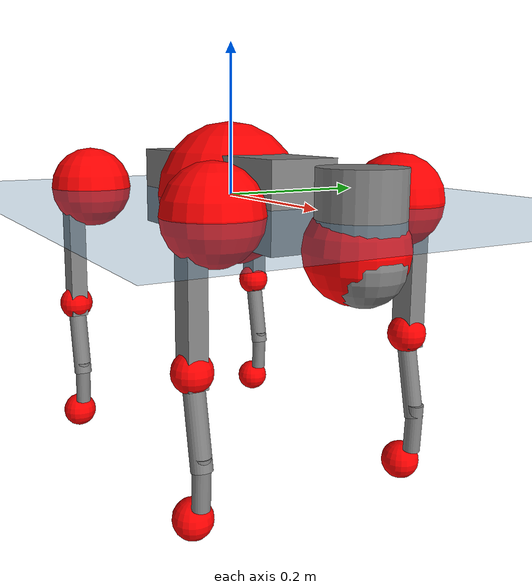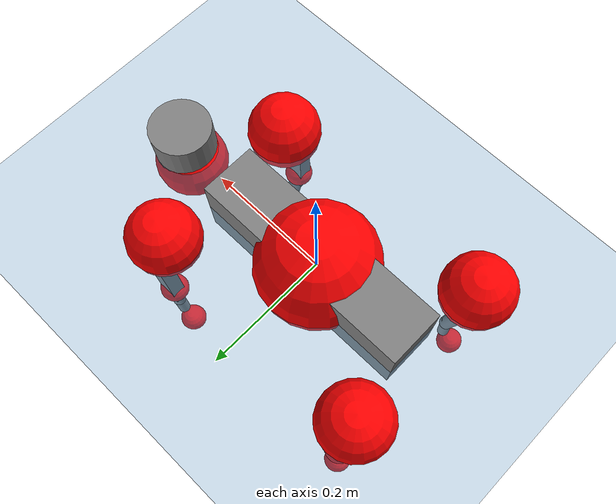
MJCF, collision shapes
<mujoco model="go2">
  <compiler angle="radian" assetdir="assets" balanceinertia="true" inertiafromgeom="false"/>

  <option timestep="0.005" density="1.2" viscosity="2e-05"/>

  <size nkey="1"/>

  <visual>
    <quality shadowsize="8192"/>
    <map shadowclip="0.5"/>
  </visual>

  <default>
    <default class="/">
      <geom contype="0" conaffinity="0" group="1" solref="-1000 -80"/>
      <site size="0.01 0.005 0.005" group="5"/>
      <general forcelimited="true" biastype="affine" gainprm="20" biasprm="0 -20 -0.5"/>
      <default class="go2">
        <joint armature="0.01" damping="0.01" frictionloss="0.2"/>
        <geom condim="1" margin="0.001"/>
        <default class="visual">
          <geom type="mesh" group="2"/>
        </default>
        <default class="collision">
          <geom group="3"/>
          <default class="foot">
            <geom size="0.022 0 0" condim="6" priority="1" friction="0.8 0.02 0.01" solimp="0.015 1 0.022"/>
          </default>
        </default>
        <default class="reward_collision_sphere">
          <geom group="5" rgba="1 0 0 1"/>
        </default>
      </default>
    </default>
  </default>

  <asset>
    <texture type="skybox" colorspace="auto" name="//unnamed_texture_0" builtin="gradient" rgb1="0.95 0.95 0.95" rgb2="0.95 0.95 0.95" width="100" height="600"/>
    <texture type="2d" colorspace="auto" name="texplane" builtin="checker" rgb1="0.345 0.575 0.748" rgb2="0.345 0.575 0.748" markrgb="1 1 1" width="512" height="512"/>
    <material name="MatPlane" class="/" texture="texplane" texuniform="true" texrepeat="2 2" specular="0.9"/>
    <material name="metal" class="/" rgba="0.9 0.95 0.95 1"/>
    <material name="black" class="/" rgba="0 0 0 1"/>
    <material name="white" class="/"/>
    <material name="gray" class="/" rgba="0.671705 0.692426 0.77427 1"/>
    <mesh name="base_0" class="/" file="base_0.obj"/>
    <mesh name="base_1" class="/" file="base_1.obj"/>
    <mesh name="base_2" class="/" file="base_2.obj"/>
    <mesh name="base_3" class="/" file="base_3.obj"/>
    <mesh name="base_4" class="/" file="base_4.obj"/>
    <mesh name="hip_0" class="/" file="hip_0.obj"/>
    <mesh name="hip_1" class="/" file="hip_1.obj"/>
    <mesh name="thigh_0" class="/" file="thigh_0.obj"/>
    <mesh name="thigh_1" class="/" file="thigh_1.obj"/>
    <mesh name="thigh_mirror_0" class="/" file="thigh_mirror_0.obj"/>
    <mesh name="thigh_mirror_1" class="/" file="thigh_mirror_1.obj"/>
    <mesh name="calf_0" class="/" file="calf_0.obj"/>
    <mesh name="calf_1" class="/" file="calf_1.obj"/>
    <mesh name="calf_mirror_0" class="/" file="calf_mirror_0.obj"/>
    <mesh name="calf_mirror_1" class="/" file="calf_mirror_1.obj"/>
    <mesh name="foot" class="/" file="foot.obj"/>
  </asset>

  <worldbody>
    <geom name="floor" class="/" size="100 100 0.125" type="plane" group="0" material="MatPlane"/>
    <light name="toplight_shadow" class="/" pos="0 0 5" dir="0.0990148 0.0990148 -0.990148" type="directional" ambient="0.04 0.04 0.04" diffuse="0.55 0.55 0.55" specular="0.12 0.12 0.12"/>
    <light name="toplight_fill" class="/" pos="0 0 5" dir="0.0990148 0.0990148 -0.990148" type="directional" castshadow="false" ambient="0.04 0.04 0.04" diffuse="0.3 0.3 0.3" specular="0.08 0.08 0.08"/>
    <body name="trunk" childclass="go2" pos="-0.00258095 -0.00120185 0.000839475" quat="1 0.000294299 -0.000587733 0.00069738">
      <inertial pos="0.018202 -0.000463296 -0.00453014" quat="-0.00264837 0.714649 -0.00516772 0.699459" mass="6.18844" diaginertia="0.107099 0.155968 0.00876605"/>
      <joint name="//unnamed_joint_0" type="free" armature="0" damping="0" frictionloss="0"/>
      <geom name="//unnamed_geom_1" class="visual" material="black" mesh="base_0"/>
      <geom name="//unnamed_geom_2" class="visual" material="black" mesh="base_1"/>
      <geom name="//unnamed_geom_3" class="visual" material="black" mesh="base_2"/>
      <geom name="//unnamed_geom_4" class="visual" material="white" mesh="base_3"/>
      <geom name="//unnamed_geom_5" class="visual" material="gray" mesh="base_4"/>
      <geom name="trunk_1" class="collision" size="0.182041 0.0452442 0.055164" type="box"/>
      <geom name="trunk_2" class="collision" size="0.0483895 0.0435505" pos="0.2843 0 0.00809945" type="cylinder"/>
      <geom name="trunk_3" class="collision" size="0.0454861" pos="0.292281 0 -0.0485967"/>
      <geom name="//unnamed_geom_9" class="reward_collision_sphere" size="0.096779"/>
      <geom name="//unnamed_geom_10" class="reward_collision_sphere" size="0.0580674" pos="0.279313 0 -0.0364475"/>
      <site name="imu" pos="-0.0245203 -0.00474119 0.0394529" size="0.0096779"/>
      <camera name="track" pos="0 -2.19176 0" quat="0.707107 0.707107 0 0" mode="trackcom"/>
      <camera name="ego_camera" pos="0.311234 0 0.0364475" quat="-0.5 -0.5 0.5 0.5"/>
      <body name="FL_hip" pos="0.191966 0.050435 0.00221096" quat="0.999999 0.00021935 0.0010933 0.000440774">
        <inertial pos="-0.00798389 0.00258381 -0.000214526" quat="0.498094 0.497941 0.504129 0.499811" mass="0.631679" diaginertia="0.000901121 0.000938382 0.00017222"/>
        <joint name="FL_hip_joint" pos="0 0 0" axis="0.999993 0.00258038 -0.00261207" stiffness="0.00390371" range="-1.05805 1.00269" armature="0.0104708" damping="0" frictionloss="0.18697"/>
        <geom name="//unnamed_geom_11" class="visual" material="metal" mesh="hip_0"/>
        <geom name="//unnamed_geom_12" class="visual" material="gray" mesh="hip_1"/>
        <geom name="//unnamed_geom_13" class="collision" size="0.0445183 0.0193558" pos="0 0.0876704 0" quat="0.707107 0.707107 0 0" type="cylinder"/>
        <geom name="//unnamed_geom_14" class="reward_collision_sphere" size="0.0580674" pos="0 0.0767116 0"/>
        <body name="FL_thigh" pos="5.42034e-05 0.103948 0.002055" quat="1 -0.000320564 -3.21348e-06 -0.000129743">
          <inertial pos="-0.00120162 -0.0240235 -0.0240791" quat="0.829102 0.0871435 -0.0213652 0.551851" mass="1.05309" diaginertia="0.00582315 0.00908118 0.000308497"/>
          <joint name="FL_thigh_joint" pos="0 0 0" axis="0.00184356 0.999991 0.00385677" stiffness="0.014217" range="-1.60584 3.52901" armature="0.0104493" damping="0" frictionloss="0.191158"/>
          <geom name="//unnamed_geom_15" class="visual" material="metal" mesh="thigh_0"/>
          <geom name="//unnamed_geom_16" class="visual" material="gray" mesh="thigh_1"/>
          <geom name="//unnamed_geom_17" class="collision" size="0.10307 0.0118554 0.0164524" pos="0 0 -0.0862592" quat="0.707107 0 0.707107 0" type="box"/>
          <body name="FL_calf" pos="0.000477257 -0.00154663 -0.173285" quat="1 -0.000191522 6.54188e-05 0.000278897">
            <inertial pos="0.00674222 -0.000351786 -0.11583" quat="0.712715 -0.00882098 -0.000609294 0.701398" mass="0.21611" diaginertia="0.00149249 0.00231101 1.83222e-05"/>
            <joint name="FL_calf_joint" pos="0 0 0" axis="-0.00608878 0.999956 -0.00717163" range="-2.72923 -0.876832" armature="0.00961075" damping="0.00112174" frictionloss="0.194293"/>
            <geom name="//unnamed_geom_18" class="visual" material="gray" mesh="calf_0"/>
            <geom name="//unnamed_geom_19" class="visual" material="black" mesh="calf_1"/>
            <geom name="FL_calf0" class="collision" size="0.0116135 0.0580674" pos="0.00798036 0 -0.0485967" quat="0.994493 0 -0.104807 0" type="cylinder"/>
            <geom name="//unnamed_geom_21" class="collision" size="0.0106457 0.0314532" pos="0.0199509 0 -0.119872" quat="0.999688 0 0.0249974 0" type="cylinder"/>
            <geom name="//unnamed_geom_22" class="visual" pos="0 0 -0.172518" quat="1 0 0 0" material="black" mesh="foot"/>
            <geom name="FL_foot" class="foot" size="0.0155087" pos="-0.00199509 0 -0.172518"/>
            <geom name="//unnamed_geom_24" class="reward_collision_sphere" size="0.0241947"/>
            <geom name="//unnamed_geom_25" class="reward_collision_sphere" size="0.0241947" pos="-0.00199509 0 -0.172518"/>
            <site name="FL_foot" class="foot" pos="-0.00199509 0 -0.172518" size="0.0096779"/>
          </body>
        </body>
      </body>
      <body name="FR_hip" pos="0.193825 -0.0483334 -0.000331519" quat="1 6.71122e-05 -0.000468161 -7.362e-05">
        <inertial pos="-0.00317943 -0.00304999 -0.000503707" quat="0.496178 0.506427 0.500012 0.49732" mass="0.643792" diaginertia="0.000888384 0.000965222 0.000168197"/>
        <joint name="FR_hip_joint" pos="0 0 0" axis="1 8.14468e-05 -0.000702635" range="-1.04345 1.04851" armature="0.00839664" damping="0.0188873" frictionloss="0.218859"/>
        <geom name="//unnamed_geom_26" class="visual" pos="0 2.49094e-09 1.06842e-07" quat="4.63268e-05 1 0 0" material="metal" mesh="hip_0"/>
        <geom name="//unnamed_geom_27" class="visual" pos="0 4.03811e-09 -2.6426e-07" quat="4.63268e-05 1 0 0" material="gray" mesh="hip_1"/>
        <geom name="//unnamed_geom_28" class="collision" size="0.0445183 0.0193558" pos="0 -0.0876704 0" quat="0.707107 0.707107 0 0" type="cylinder"/>
        <geom name="//unnamed_geom_29" class="reward_collision_sphere" size="0.0580674" pos="0 -0.0767116 0"/>
        <body name="FR_thigh" pos="0.000793136 -0.103312 0.00288139" quat="0.999999 0.000504381 0.000137113 0.00112493">
          <inertial pos="-0.00481754 0.0219236 -0.0253505" quat="0.551723 -0.0202018 0.0849039 0.829449" mass="1.02174" diaginertia="0.0059218 0.00941366 0.000302694"/>
          <joint name="FR_thigh_joint" pos="0 0 0" axis="-0.000594218 -1 0.000513888" range="-3.46955 1.58545" armature="0.00972493" damping="0.0156031" frictionloss="0.187362"/>
          <geom name="//unnamed_geom_30" class="visual" material="metal" mesh="thigh_mirror_0"/>
          <geom name="//unnamed_geom_31" class="visual" material="gray" mesh="thigh_mirror_1"/>
          <geom name="//unnamed_geom_32" class="collision" size="0.10307 0.0118554 0.0164524" pos="0 0 -0.0862592" quat="0.707107 0 0.707107 0" type="box"/>
          <body name="FR_calf" pos="0.000638329 -0.000287516 -0.172191" quat="1 3.94081e-06 1.87359e-05 3.94768e-05">
            <inertial pos="0.00629088 0.000473532 -0.113729" quat="0.703692 -0.00426811 0.00152589 0.71049" mass="0.221364" diaginertia="0.00154914 0.0023307 1.90954e-05"/>
            <joint name="FR_calf_joint" pos="0 0 0" axis="0.000160618 -0.999946 0.01035" range="0.84133 2.71209" armature="0.00994204" damping="0.0115177" frictionloss="0.184326"/>
            <geom name="//unnamed_geom_33" class="visual" material="gray" mesh="calf_mirror_0"/>
            <geom name="//unnamed_geom_34" class="visual" material="black" mesh="calf_mirror_1"/>
            <geom name="FR_calf0" class="collision" size="0.0125813 0.0580674" pos="0.00997545 0 -0.0485967" quat="0.995004 0 -0.0998334 0" type="cylinder"/>
            <geom name="//unnamed_geom_36" class="collision" size="0.0106457 0.0314532" pos="0.0199509 0 -0.119872" quat="0.999688 0 0.0249974 0" type="cylinder"/>
            <geom name="//unnamed_geom_37" class="visual" pos="0 0 -0.172518" quat="1 0 0 0" material="black" mesh="foot"/>
            <geom name="FR_foot" class="foot" size="0.0237879" pos="-0.00199509 0 -0.172518"/>
            <geom name="//unnamed_geom_39" class="reward_collision_sphere" size="0.0241947"/>
            <geom name="//unnamed_geom_40" class="reward_collision_sphere" size="0.0241947" pos="-0.00199509 0 -0.172518"/>
            <site name="FR_foot" class="foot" pos="-0.00199509 0 -0.172518" size="0.0096779"/>
          </body>
        </body>
      </body>
      <body name="RL_hip" pos="-0.19212 0.0501827 0.000529569" quat="0.999999 0.00090791 -0.000701995 0.000581372">
        <inertial pos="0.00798609 0.00244011 -0.000181519" quat="0.505488 0.498255 0.496993 0.499221" mass="0.611909" diaginertia="0.000879304 0.000964977 0.000170455"/>
        <joint name="RL_hip_joint" pos="0 0 0" axis="-0.999897 -0.0120115 0.00786751" stiffness="0.0031561" range="-1.03453 1.04606" armature="0.00961996" damping="0.00845483" frictionloss="0.184997"/>
        <geom name="//unnamed_geom_41" class="visual" pos="-1.63429e-09 0 -3.20358e-07" quat="4.63268e-05 0 1 0" material="metal" mesh="hip_0"/>
        <geom name="//unnamed_geom_42" class="visual" pos="-2.64938e-09 0 -2.84112e-07" quat="4.63268e-05 0 1 0" material="gray" mesh="hip_1"/>
        <geom name="//unnamed_geom_43" class="collision" size="0.0445183 0.0193558" pos="0 0.0876704 0" quat="0.707107 0.707107 0 0" type="cylinder"/>
        <geom name="//unnamed_geom_44" class="reward_collision_sphere" size="0.0580674" pos="0 0.0767116 0"/>
        <body name="RL_thigh" pos="-0.00235312 0.103979 0.00109589" quat="0.999999 -0.000223416 0.000970194 -0.000740576">
          <inertial pos="-0.00344316 -0.023841 -0.0261577" quat="0.828162 0.0804917 -0.0301895 0.553857" mass="1.01833" diaginertia="0.00580644 0.00904103 0.000302721"/>
          <joint name="RL_thigh_joint" pos="0 0 0" axis="0.00337587 0.999991 0.00242377" stiffness="0.00426173" range="-0.521549 4.52282" armature="0.00924751" damping="0" frictionloss="0.203169"/>
          <geom name="//unnamed_geom_45" class="visual" material="metal" mesh="thigh_0"/>
          <geom name="//unnamed_geom_46" class="visual" material="gray" mesh="thigh_1"/>
          <geom name="//unnamed_geom_47" class="collision" size="0.10307 0.0118554 0.0164524" pos="0 0 -0.0862592" quat="0.707107 0 0.707107 0" type="box"/>
          <body name="RL_calf" pos="0.000485676 -0.00187033 -0.172873" quat="1 8.60503e-06 -8.9491e-05 -2.80527e-05">
            <inertial pos="0.00635537 -0.000441728 -0.114178" quat="0.709936 0.00181112 -0.00416814 0.704252" mass="0.218137" diaginertia="0.00146906 0.0023139 1.83207e-05"/>
            <joint name="RL_calf_joint" pos="0 0 0" axis="-0.00202084 0.999998 -0.000870902" stiffness="0.00041545" range="-2.70082 -0.837099" armature="0.00993102" damping="0" frictionloss="0.192228"/>
            <geom name="//unnamed_geom_48" class="visual" material="gray" mesh="calf_0"/>
            <geom name="//unnamed_geom_49" class="visual" material="black" mesh="calf_1"/>
            <geom name="RL_calf0" class="collision" size="0.0125813 0.0580674" pos="0.00997545 0 -0.0485967" quat="0.995004 0 -0.0998334 0" type="cylinder"/>
            <geom name="//unnamed_geom_51" class="collision" size="0.0106457 0.0314532" pos="0.0199509 0 -0.119872" quat="0.999688 0 0.0249974 0" type="cylinder"/>
            <geom name="//unnamed_geom_52" class="visual" pos="0 0 -0.172518" quat="1 0 0 0" material="black" mesh="foot"/>
            <geom name="RL_foot" class="foot" size="0.0203387" pos="-0.00199509 0 -0.172518"/>
            <geom name="//unnamed_geom_54" class="reward_collision_sphere" size="0.0241947"/>
            <geom name="//unnamed_geom_55" class="reward_collision_sphere" size="0.0241947" pos="-0.00199509 0 -0.172518"/>
            <site name="RL_foot" class="foot" pos="-0.00199509 0 -0.172518" size="0.0096779"/>
          </body>
        </body>
      </body>
      <body name="RR_hip" pos="-0.192674 -0.0536849 -0.000394678" quat="1 -0.000212446 0.000446455 -0.000313928">
        <inertial pos="0.00506358 -0.000106478 0.000115624" quat="0.492185 0.492113 0.502972 0.512444" mass="0.614345" diaginertia="0.000877444 0.000950963 0.000169062"/>
        <joint name="RR_hip_joint" pos="0 0 0" axis="-0.999994 -0.00144962 -0.00303598" stiffness="0.00447371" range="-1.05497 1.05133" armature="0.0110286" damping="0.0191373" frictionloss="0.171802"/>
        <geom name="//unnamed_geom_56" class="visual" pos="1.63769e-09 2.49094e-09 -4.272e-07" quat="2.14617e-09 4.63268e-05 4.63268e-05 -1" material="metal" mesh="hip_0"/>
        <geom name="//unnamed_geom_57" class="visual" pos="2.64096e-09 4.03811e-09 -1.98519e-08" quat="2.14617e-09 4.63268e-05 4.63268e-05 -1" material="gray" mesh="hip_1"/>
        <geom name="//unnamed_geom_58" class="collision" size="0.0445183 0.0193558" pos="0 -0.0876704 0" quat="0.707107 0.707107 0 0" type="cylinder"/>
        <geom name="//unnamed_geom_59" class="reward_collision_sphere" size="0.0580674" pos="0 -0.0767116 0"/>
        <body name="RR_thigh" pos="-0.000565969 -0.105294 -0.00288465" quat="1 -0.000276352 -8.36457e-05 -0.000189396">
          <inertial pos="-0.00348076 0.0247428 -0.0262141" quat="0.551304 -0.0193739 0.0854541 0.82969" mass="1.06046" diaginertia="0.00599756 0.00937353 0.000300498"/>
          <joint name="RR_thigh_joint" pos="0 0 0" axis="0.000234469 -0.999997 -0.00236076" range="-4.58603 0.536941" armature="0.00971257" damping="0.021197" frictionloss="0.203428"/>
          <geom name="//unnamed_geom_60" class="visual" material="metal" mesh="thigh_mirror_0"/>
          <geom name="//unnamed_geom_61" class="visual" material="gray" mesh="thigh_mirror_1"/>
          <geom name="//unnamed_geom_62" class="collision" size="0.10307 0.0118554 0.0164524" pos="0 0 -0.0862592" quat="0.707107 0 0.707107 0" type="box"/>
          <body name="RR_calf" pos="-0.00258317 -6.881e-05 -0.172767" quat="1 -0.000111534 -2.69241e-05 5.4625e-05">
            <inertial pos="0.00869658 0.00101278 -0.114662" quat="0.701552 -0.00430115 0.00472352 0.71259" mass="0.218608" diaginertia="0.00142615 0.00219904 1.81331e-05"/>
            <joint name="RR_calf_joint" pos="0 0 0" axis="-0.00666912 -0.999962 0.00559692" range="0.866952 2.77775" armature="0.00876505" damping="0.012778" frictionloss="0.183441"/>
            <geom name="//unnamed_geom_63" class="visual" material="gray" mesh="calf_mirror_0"/>
            <geom name="//unnamed_geom_64" class="visual" material="black" mesh="calf_mirror_1"/>
            <geom name="RR_calf0" class="collision" size="0.0125813 0.0580674" pos="0.00997545 0 -0.0485967" quat="0.995004 0 -0.0998334 0" type="cylinder"/>
            <geom name="//unnamed_geom_66" class="collision" size="0.0106457 0.0314532" pos="0.0199509 0 -0.119872" quat="0.999688 0 0.0249974 0" type="cylinder"/>
            <geom name="//unnamed_geom_67" class="visual" pos="0 0 -0.172518" quat="1 0 0 0" material="black" mesh="foot"/>
            <geom name="RR_foot" class="foot" size="0.022997" pos="-0.00199509 0 -0.172518"/>
            <geom name="//unnamed_geom_69" class="reward_collision_sphere" size="0.0241947"/>
            <geom name="//unnamed_geom_70" class="reward_collision_sphere" size="0.0241947" pos="-0.00199509 0 -0.172518"/>
            <site name="RR_foot" class="foot" pos="-0.00199509 0 -0.172518" size="0.0096779"/>
          </body>
        </body>
      </body>
    </body>
  </worldbody>

  <contact>
    <pair class="/" geom1="floor" geom2="FL_foot" name="//unnamed_contact_0"/>
    <pair class="/" geom1="floor" geom2="FR_foot" name="//unnamed_contact_1"/>
    <pair class="/" geom1="floor" geom2="RL_foot" name="//unnamed_contact_2"/>
    <pair class="/" geom1="floor" geom2="RR_foot" name="//unnamed_contact_3"/>
  </contact>

  <actuator>
    <general name="FL_hip" class="/" joint="FL_hip_joint" forcerange="-22.4247 22.4247" gainprm="19.4009" biasprm="0 -19.4009 -0.483167"/>
    <general name="FL_thigh" class="/" joint="FL_thigh_joint" forcerange="-23.0348 23.0348" gainprm="19.4009" biasprm="0 -19.4009 -0.483167"/>
    <general name="FL_calf" class="/" joint="FL_calf_joint" forcerange="-44.1509 44.1509" gainprm="19.4009" biasprm="0 -19.4009 -0.483167"/>
    <general name="FR_hip" class="/" joint="FR_hip_joint" forcerange="-25.1409 25.1409" gainprm="19.4009" biasprm="0 -19.4009 -0.483167"/>
    <general name="FR_thigh" class="/" joint="FR_thigh_joint" forcerange="-22.6727 22.6727" gainprm="19.4009" biasprm="0 -19.4009 -0.483167"/>
    <general name="FR_calf" class="/" joint="FR_calf_joint" forcerange="-41.0924 41.0924" gainprm="19.4009" biasprm="0 -19.4009 -0.483167"/>
    <general name="RL_hip" class="/" joint="RL_hip_joint" forcerange="-22.7411 22.7411" gainprm="19.4009" biasprm="0 -19.4009 -0.483167"/>
    <general name="RL_thigh" class="/" joint="RL_thigh_joint" forcerange="-22.6923 22.6923" gainprm="19.4009" biasprm="0 -19.4009 -0.483167"/>
    <general name="RL_calf" class="/" joint="RL_calf_joint" forcerange="-44.2117 44.2117" gainprm="19.4009" biasprm="0 -19.4009 -0.483167"/>
    <general name="RR_hip" class="/" joint="RR_hip_joint" forcerange="-22.9673 22.9673" gainprm="19.4009" biasprm="0 -19.4009 -0.483167"/>
    <general name="RR_thigh" class="/" joint="RR_thigh_joint" forcerange="-23.8629 23.8629" gainprm="19.4009" biasprm="0 -19.4009 -0.483167"/>
    <general name="RR_calf" class="/" joint="RR_calf_joint" forcerange="-48.2108 48.2108" gainprm="19.4009" biasprm="0 -19.4009 -0.483167"/>
  </actuator>

  <sensor>
    <gyro site="imu" name="imu_angular_velocity"/>
    <velocimeter site="imu" name="imu_linear_velocity"/>
    <framelinvel objtype="site" objname="FL_foot" name="FL_foot_global_linear_velocity"/>
    <framelinvel objtype="site" objname="FR_foot" name="FR_foot_global_linear_velocity"/>
    <framelinvel objtype="site" objname="RL_foot" name="RL_foot_global_linear_velocity"/>
    <framelinvel objtype="site" objname="RR_foot" name="RR_foot_global_linear_velocity"/>
  </sensor>

  <keyframe>
    <key name="home" qpos="0 0 0.325 1 0 0 0 0.1 0.8 -1.5 -0.1 -0.8 1.5 -0.1 0.8 -1.5 0.1 -0.8 1.5"/>
  </keyframe>
</mujoco>
